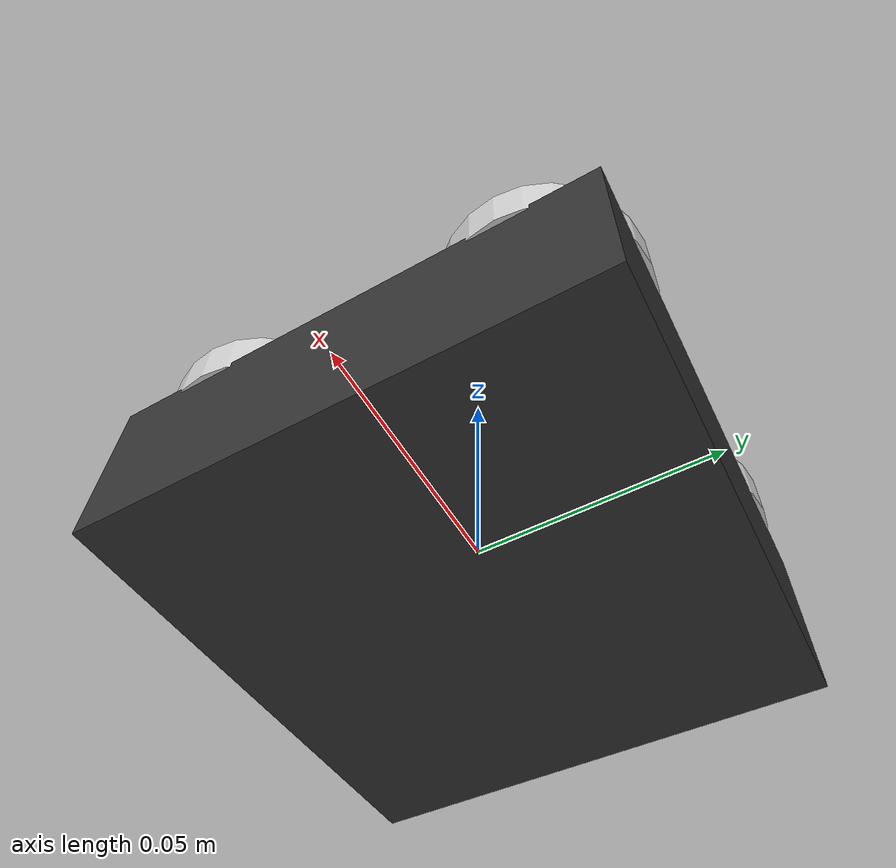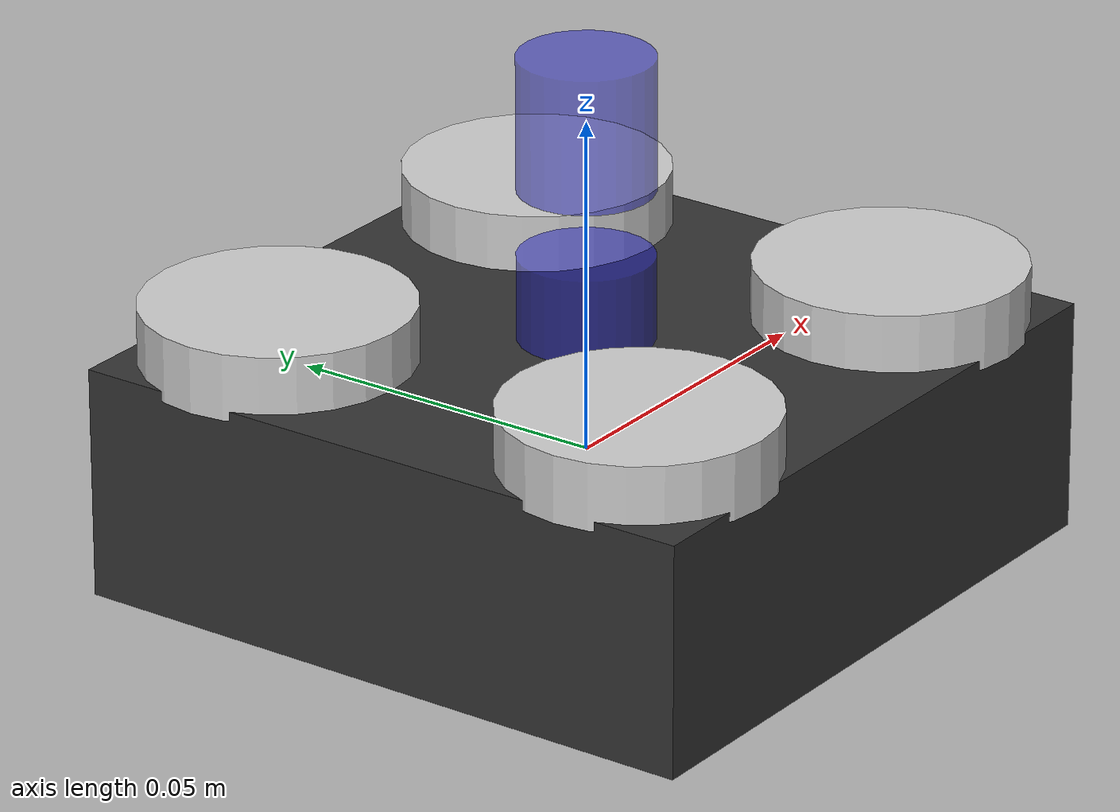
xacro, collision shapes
<?xml version="1.0"?>
<robot xmlns:xacro="http://www.ros.org/wiki/xacro" name="crazyflie">
  <!-- 定義常數參數 -->
  <xacro:property name="body_mass" value="0.025"/>
  <xacro:property name="prop_mass" value="0.0008"/>
  <xacro:property name="body_size_x" value="0.10"/>
  <xacro:property name="body_size_y" value="0.10"/>
  <xacro:property name="body_size_z" value="0.03485"/>
  <xacro:property name="prop_distance" value="0.031"/>
  <xacro:property name="body_height" value="0.017425"/>

  <!-- 主機身連結 -->
  <link name="crazyflie/base_footprint">
    <!-- 慣性屬性 -->
    <inertial>
      <mass value="${body_mass}"/>
      <origin xyz="0 0 0" rpy="0 0 0"/>
      <inertia ixx="16.571710E-06" ixy="0.830806E-06" ixz="0.718277E-06"
               iyy="16.655602E-06" iyz="1.800197E-06" izz="29.261652E-06"/>
    </inertial>

    <!-- 碰撞幾何 -->
    <collision>
      <origin xyz="0 0 0" rpy="0 0 0"/>
      <geometry>
        <box size="${body_size_x} ${body_size_y} ${body_size_z}"/>
      </geometry>
    </collision>

    <!-- 視覺幾何 -->
    <visual>
      <origin xyz="0 0 0" rpy="0 0 0"/>
      <geometry>
        <mesh filename="package://drone_in_warehouse/models/crazyflie/meshes/cf2_assembly.dae" scale="1 1 1"/>
      </geometry>
      <material name="crazyflie_material">
        <color rgba="0.2 0.2 0.2 1"/>
      </material>
    </visual>
  </link>

  <!-- 馬達1連結 (前右) -->
  <link name="m1_prop">
    <inertial>
      <mass value="${prop_mass}"/>
      <origin xyz="0 0 0" rpy="0 0 0"/>
      <inertia ixx="8.33333E-09" ixy="0" ixz="0"
               iyy="1.08333E-07" iyz="0" izz="1.13333E-07"/>
    </inertial>

    <visual>
      <origin xyz="0 0 0" rpy="0 0 0"/>
      <geometry>
        <mesh filename="package://drone_in_warehouse/models/crazyflie/meshes/ccw_prop.dae" scale="1 1 1"/>
      </geometry>
      <material name="prop_material">
        <color rgba="0.8 0.8 0.8 1"/>
      </material>
    </visual>
    <collision>
      <origin xyz="0 0 0" rpy="0 0 0"/>
      <geometry>
        <cylinder radius="0.02" length="0.01"/>
      </geometry>
    </collision>
  </link>

  <!-- 馬達2連結 (前左) -->
  <link name="m2_prop">
    <inertial>
      <mass value="${prop_mass}"/>
      <origin xyz="0 0 0" rpy="0 0 0"/>
      <inertia ixx="8.33333E-09" ixy="0" ixz="0"
               iyy="1.08333E-07" iyz="0" izz="1.13333E-07"/>
    </inertial>

    <visual>
      <origin xyz="0 0 0" rpy="0 0 0"/>
      <geometry>
        <mesh filename="package://drone_in_warehouse/models/crazyflie/meshes/cw_prop.dae" scale="1 1 1"/>
      </geometry>
      <material name="prop_material"/>
    </visual>
    <collision>
      <origin xyz="0 0 0" rpy="0 0 0"/>
      <geometry>
        <cylinder radius="0.02" length="0.01"/>
      </geometry>
    </collision>
  </link>

  <!-- 馬達3連結 (後左) -->
  <link name="m3_prop">
    <inertial>
      <mass value="${prop_mass}"/>
      <origin xyz="0 0 0" rpy="0 0 0"/>
      <inertia ixx="8.33333E-09" ixy="0" ixz="0"
               iyy="1.08333E-07" iyz="0" izz="1.13333E-07"/>
    </inertial>

    <visual>
      <origin xyz="0 0 0" rpy="0 0 0"/>
      <geometry>
        <mesh filename="package://drone_in_warehouse/models/crazyflie/meshes/ccw_prop.dae" scale="1 1 1"/>
      </geometry>
      <material name="prop_material"/>
    </visual>
    <collision>
      <origin xyz="0 0 0" rpy="0 0 0"/>
      <geometry>
        <cylinder radius="0.02" length="0.01"/>
      </geometry>
    </collision>
  </link>

  <!-- 馬達4連結 (後右) -->
  <link name="m4_prop">
    <inertial>
      <mass value="${prop_mass}"/>
      <origin xyz="0 0 0" rpy="0 0 0"/>
      <inertia ixx="8.33333E-09" ixy="0" ixz="0"
               iyy="1.08333E-07" iyz="0" izz="1.13333E-07"/>
    </inertial>

    <visual>
      <origin xyz="0 0 0" rpy="0 0 0"/>
      <geometry>
        <mesh filename="package://drone_in_warehouse/models/crazyflie/meshes/cw_prop.dae" scale="1 1 1"/>
      </geometry>
      <material name="prop_material"/>
    </visual>
    <collision>
      <origin xyz="0 0 0" rpy="0 0 0"/>
      <geometry>
        <cylinder radius="0.02" length="0.01"/>
      </geometry>
    </collision>
  </link>

  <!-- 馬達1關節 (前右) -->
  <joint name="m1_joint" type="revolute">
    <parent link="crazyflie/base_footprint"/>
    <child link="m1_prop"/>
    <origin xyz="${prop_distance} -${prop_distance} 0.021" rpy="0 0 0"/>
    <axis xyz="0 0 1"/>
    <limit lower="-1000" upper="1000" effort="100" velocity="100"/>
    <dynamics damping="0.1" friction="0.1"/>
  </joint>

  <!-- 馬達2關節 (前左) -->
  <joint name="m2_joint" type="revolute">
    <parent link="crazyflie/base_footprint"/>
    <child link="m2_prop"/>
    <origin xyz="-${prop_distance} -${prop_distance} 0.021" rpy="0 0 0"/>
    <axis xyz="0 0 1"/>
    <limit lower="-1000" upper="1000" effort="100" velocity="100"/>
    <dynamics damping="0.1" friction="0.1"/>
  </joint>

  <!-- 馬達3關節 (後左) -->
  <joint name="m3_joint" type="revolute">
    <parent link="crazyflie/base_footprint"/>
    <child link="m3_prop"/>
    <origin xyz="-${prop_distance} ${prop_distance} 0.021" rpy="0 0 0"/>
    <axis xyz="0 0 1"/>
    <limit lower="-1000" upper="1000" effort="100" velocity="100"/>
    <dynamics damping="0.1" friction="0.1"/>
  </joint>

  <!-- 馬達4關節 (後右) -->
  <joint name="m4_joint" type="revolute">
    <parent link="crazyflie/base_footprint"/>
    <child link="m4_prop"/>
    <origin xyz="${prop_distance} ${prop_distance} 0.021" rpy="0 0 0"/>
    <axis xyz="0 0 1"/>
    <limit lower="-1000" upper="1000" effort="100" velocity="100"/>
    <dynamics damping="0.1" friction="0.1"/>
  </joint>

  <!-- 多距離感測器連結 -->
  <link name="crazyflie/base_footprint/multiranger">
    <visual>
      <origin xyz="0 0 0" rpy="0 0 0"/>
      <geometry>
        <cylinder radius="0.01" length="0.02"/>
      </geometry>
      <material name="sensor_material">
        <color rgba="0.1 0.1 0.8 0.5"/>
      </material>
    </visual>
    <collision>
      <origin xyz="0 0 0" rpy="0 0 0"/>
      <geometry>
        <cylinder radius="0.01" length="0.02"/>
      </geometry>
    </collision>
  </link>

  <link name="crazyflie/base_footprint/imu">
    <visual>
      <origin xyz="0 0 0" rpy="0 0 0"/>
      <geometry>
        <cylinder radius="0.01" length="0.02"/>
      </geometry>
      <material name="sensor_material">
        <color rgba="0.1 0.1 0.8 0.5"/>
      </material>
    </visual>
    <collision>
      <origin xyz="0 0 0" rpy="0 0 0"/>
      <geometry>
        <cylinder radius="0.01" length="0.02"/>
      </geometry>
    </collision>
  </link>

    <!-- imu感測器關節 -->
  <joint name="imu_joint" type="fixed">
    <parent link="crazyflie/base_footprint"/>
    <child link="crazyflie/base_footprint/imu"/>
    <origin xyz="0 0 0.02" rpy="0 0 0"/>
  </joint>

  <!-- multiranger感測器關節 -->
  <joint name="multiranger_joint" type="fixed">
    <parent link="crazyflie/base_footprint"/>
    <child link="crazyflie/base_footprint/multiranger"/>
    <origin xyz="0 0 0.05" rpy="0 0 0"/>
  </joint>

  <!-- 定義材質 -->
  <material name="crazyflie_material">
    <color rgba="1 0 0 1"/>
  </material>

  <material name="prop_material">
    <color rgba="0.3 0.8 0 1"/>
  </material>

  <material name="sensor_material">
    <color rgba="0.1 0.1 0.8 1"/>
  </material>

</robot>
